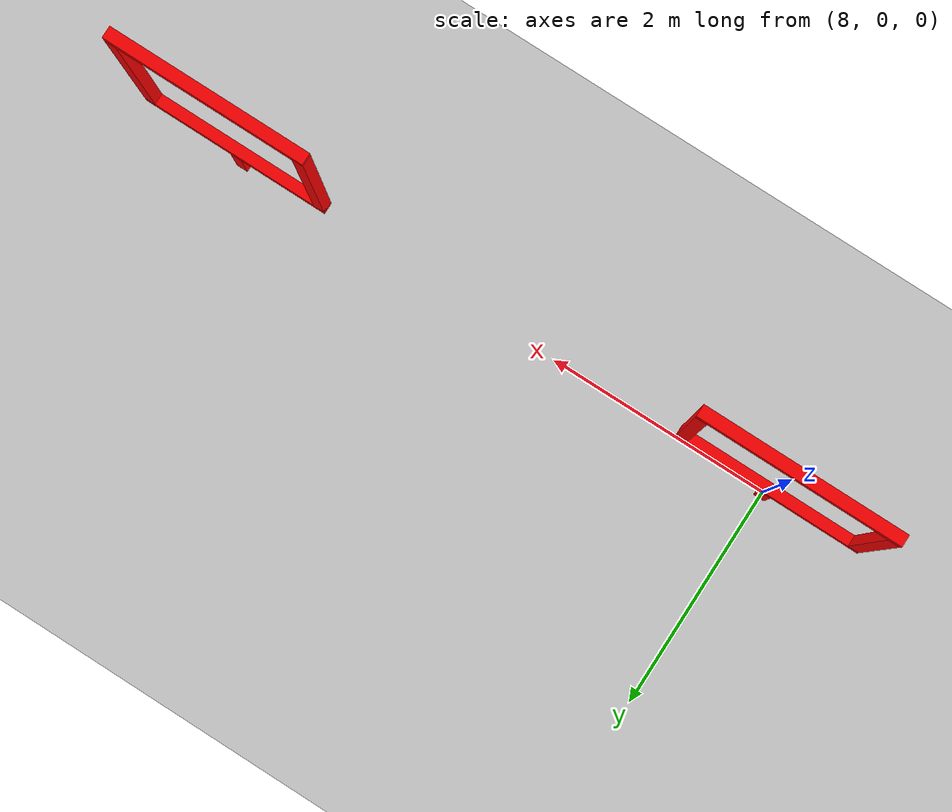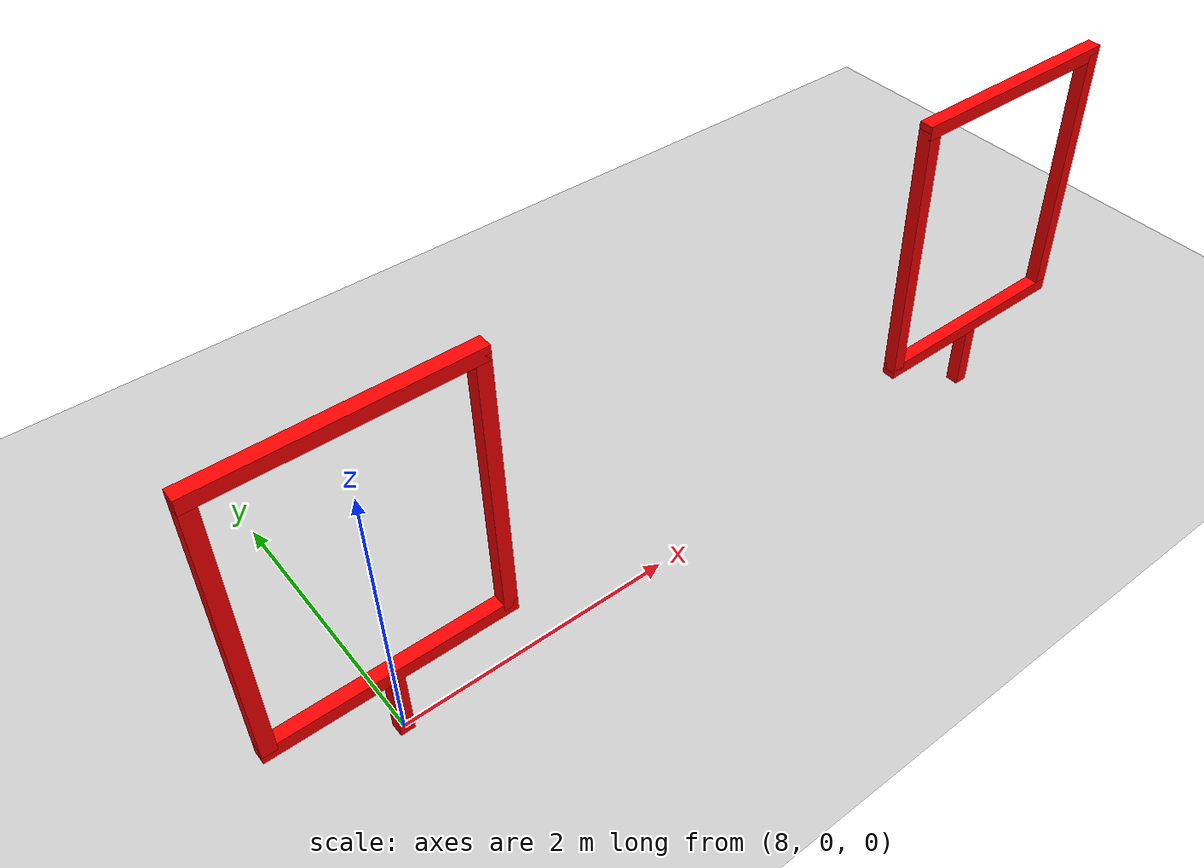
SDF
<?xml version="1.0" encoding="UTF-8"?>
<sdf version="1.9">
  <world name="puertas2">
    <physics type="ode">
      <max_step_size>0.004</max_step_size>
      <real_time_factor>1.0</real_time_factor>
      <real_time_update_rate>250</real_time_update_rate>
    </physics>
    <gravity>0 0 -9.8</gravity>
    <magnetic_field>6e-06 2.3e-05 -4.2e-05</magnetic_field> <atmosphere type="adiabatic"/>
    <scene>
      <grid>false</grid>
      <ambient>0.4 0.4 0.4 1</ambient>
      <background>0.7 0.7 0.7 1</background>
      <shadows>true</shadows>
    </scene>

    <model name="ground_plane">
      <static>true</static>
      <link name="link">
        <collision name="collision">
          <geometry>
            <plane>
              <normal>0 0 1</normal>
              <size>1 1</size> </plane>
          </geometry>
          <surface>
            <friction><ode/></friction>
            <bounce/>
            <contact/>
          </surface>
        </collision>
        <visual name="visual">
          <geometry>
            <plane>
              <normal>0 0 1</normal>
              <size>500 500</size> </plane>
          </geometry>
          <material>
            <ambient>0.8 0.8 0.8 1</ambient>
            <diffuse>0.8 0.8 0.8 1</diffuse>
            <specular>0.8 0.8 0.8 1</specular>
          </material>
        </visual>
        <enable_wind>false</enable_wind>
      </link>
      <pose>0 0 0 0 0 0</pose>
    </model>

    <model name="puerta_grande_A">
      <static>true</static>
      <link name="soporte_gA"> <pose>0 0 0.25 0 0 0</pose>
        <collision name="col_soporte_gA"><geometry><box><size>0.1 0.1 0.5</size></box></geometry></collision>
        <visual name="vis_soporte_gA"><geometry><box><size>0.1 0.1 0.5</size></box></geometry><material><ambient>1 0 0 1</ambient><diffuse>1 0 0 1</diffuse></material></visual>
      </link>
      <link name="barra_inferior_gA">
        <pose>0 0 0.55 0 0 0</pose>
        <collision name="col_inferior_gA"><geometry><box><size>1.7 0.1 0.1</size></box></geometry></collision>
        <visual name="vis_inferior_gA"><geometry><box><size>1.7 0.1 0.1</size></box></geometry><material><ambient>1 0 0 1</ambient><diffuse>1 0 0 1</diffuse></material></visual>
      </link>
      <link name="barra_superior_gA">
        <pose>0 0 2.55 0 0 0</pose>
        <collision name="col_superior_gA"><geometry><box><size>1.7 0.1 0.1</size></box></geometry></collision>
        <visual name="vis_superior_gA"><geometry><box><size>1.7 0.1 0.1</size></box></geometry><material><ambient>1 0 0 1</ambient><diffuse>1 0 0 1</diffuse></material></visual>
      </link>
      <link name="barra_izquierda_gA">
        <pose>-0.8 0 1.55 0 0 0</pose> <collision name="col_izquierda_gA"><geometry><box><size>0.1 0.1 2.0</size></box></geometry></collision> <visual name="vis_izquierda_gA"><geometry><box><size>0.1 0.1 2.0</size></box></geometry><material><ambient>1 0 0 1</ambient><diffuse>1 0 0 1</diffuse></material></visual>
      </link>
      <link name="barra_derecha_gA">
        <pose>0.8 0 1.55 0 0 0</pose> <collision name="col_derecha_gA"><geometry><box><size>0.1 0.1 2.0</size></box></geometry></collision> <visual name="vis_derecha_gA"><geometry><box><size>0.1 0.1 2.0</size></box></geometry><material><ambient>1 0 0 1</ambient><diffuse>1 0 0 1</diffuse></material></visual>
      </link>
      <joint name="joint_soporte_inferior_gA" type="fixed"><parent>soporte_gA</parent><child>barra_inferior_gA</child></joint>
       <joint name="joint_inferior_izquierda_gA" type="fixed"><parent>barra_inferior_gA</parent><child>barra_izquierda_gA</child></joint>
       <joint name="joint_inferior_derecha_gA" type="fixed"><parent>barra_inferior_gA</parent><child>barra_derecha_gA</child></joint>
       <joint name="joint_inferior_superior_gA" type="fixed"><parent>barra_inferior_gA</parent><child>barra_superior_gA</child></joint>
      <pose>8 0 0 0 0 0</pose> </model>

    <model name="puerta_grande_B"> <static>true</static>
      <link name="soporte_gB">
        <pose>0 0 0.25 0 0 0</pose>
        <collision name="col_soporte_gB"><geometry><box><size>0.1 0.1 0.5</size></box></geometry></collision>
        <visual name="vis_soporte_gB"><geometry><box><size>0.1 0.1 0.5</size></box></geometry><material><ambient>1 0 0 1</ambient><diffuse>1 0 0 1</diffuse></material></visual>
      </link>
      <link name="barra_inferior_gB">
        <pose>0 0 0.55 0 0 0</pose>
        <collision name="col_inferior_gB"><geometry><box><size>1.7 0.1 0.1</size></box></geometry></collision>
        <visual name="vis_inferior_gB"><geometry><box><size>1.7 0.1 0.1</size></box></geometry><material><ambient>1 0 0 1</ambient><diffuse>1 0 0 1</diffuse></material></visual>
      </link>
      <link name="barra_superior_gB">
        <pose>0 0 2.55 0 0 0</pose>
        <collision name="col_superior_gB"><geometry><box><size>1.7 0.1 0.1</size></box></geometry></collision>
        <visual name="vis_superior_gB"><geometry><box><size>1.7 0.1 0.1</size></box></geometry><material><ambient>1 0 0 1</ambient><diffuse>1 0 0 1</diffuse></material></visual>
      </link>
      <link name="barra_izquierda_gB">
        <pose>-0.8 0 1.55 0 0 0</pose>
        <collision name="col_izquierda_gB"><geometry><box><size>0.1 0.1 2.0</size></box></geometry></collision>
        <visual name="vis_izquierda_gB"><geometry><box><size>0.1 0.1 2.0</size></box></geometry><material><ambient>1 0 0 1</ambient><diffuse>1 0 0 1</diffuse></material></visual>
      </link>
      <link name="barra_derecha_gB">
        <pose>0.8 0 1.55 0 0 0</pose>
        <collision name="col_derecha_gB"><geometry><box><size>0.1 0.1 2.0</size></box></geometry></collision>
        <visual name="vis_derecha_gB"><geometry><box><size>0.1 0.1 2.0</size></box></geometry><material><ambient>1 0 0 1</ambient><diffuse>1 0 0 1</diffuse></material></visual>
      </link>
      <joint name="joint_soporte_inferior_gB" type="fixed"><parent>soporte_gB</parent><child>barra_inferior_gB</child></joint>
       <joint name="joint_inferior_izquierda_gB" type="fixed"><parent>barra_inferior_gB</parent><child>barra_izquierda_gB</child></joint>
       <joint name="joint_inferior_derecha_gB" type="fixed"><parent>barra_inferior_gB</parent><child>barra_derecha_gB</child></joint>
       <joint name="joint_inferior_superior_gB" type="fixed"><parent>barra_inferior_gB</parent><child>barra_superior_gB</child></joint>
      <pose>13 0 0 0 0 0</pose> </model>

    <light name="sunUTC" type="directional">
      <pose>0 0 500 0 0 0</pose>
      <cast_shadows>true</cast_shadows>
      <intensity>1</intensity>
      <direction>0.001 0.625 -0.78</direction> <diffuse>0.904 0.904 0.904 1</diffuse>
      <specular>0.271 0.271 0.271 1</specular>
      <attenuation>
        <range>2000</range>
        <linear>0</linear>
        <constant>1</constant>
        <quadratic>0</quadratic>
      </attenuation>
      <spot>
        <inner_angle>0</inner_angle>
        <outer_angle>0</outer_angle>
        <falloff>0</falloff>
      </spot>
    </light>

    <spherical_coordinates>
      <surface_model>EARTH_WGS84</surface_model>
      <world_frame_orientation>ENU</world_frame_orientation>
      <latitude_deg>47.397971057728974</latitude_deg> <longitude_deg> 8.546163739800146</longitude_deg>
      <elevation>0</elevation> </spherical_coordinates>

  </world>
</sdf>
